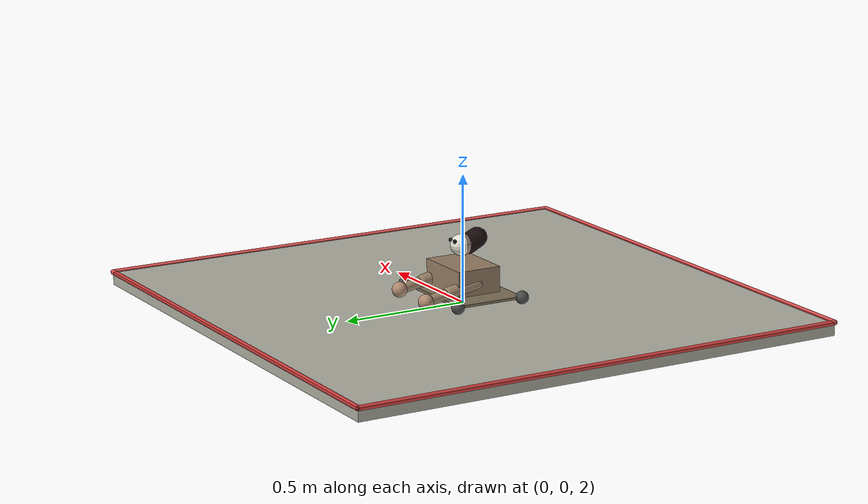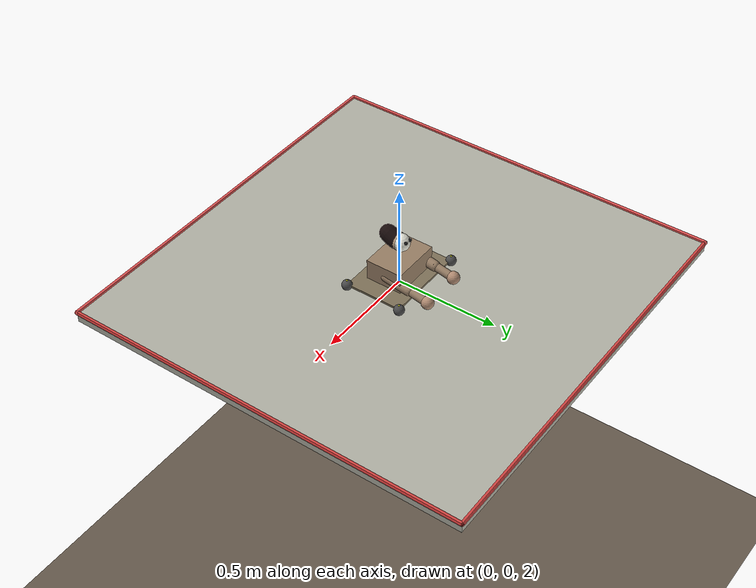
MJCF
<mujoco model="platform_creature_v9">
  <compiler angle="radian" inertiafromgeom="true"/>
  <option gravity="0 0 -9.81" integrator="Euler" timestep="0.01" cone="elliptic"/>

  <default>
    <joint armature="0.1" damping="2" limited="true"/>
    <geom contype="1" conaffinity="1" friction="0.8 0.3 0.1"/>
  </default>

  <asset>
    <texture builtin="checker" height="100" name="texplane" rgb1="0.6 0.6 0.6" rgb2="0.8 0.8 0.8" type="2d" width="100"/>
    <material name="MatPlatform" reflectance="0.3" shininess="0.5" specular="0.5" texrepeat="10 10" texture="texplane"/>
    <texture builtin="flat" height="100" name="texground" rgb1="0.4 0.35 0.3" rgb2="0.4 0.35 0.3" type="2d" width="100"/>
    <material name="MatGround" texture="texground"/>
  </asset>

  <worldbody>
    <light cutoff="100" diffuse="1 1 1" dir="0 0 -1" directional="true" pos="0 0 5" specular="0.2 0.2 0.2"/>

    <!-- Ground below the platform (where you land if you fall) -->
    <geom name="ground" type="plane" size="10 10 0.1" pos="0 0 0" rgba="0.4 0.35 0.3 1"
          material="MatGround" conaffinity="1" contype="1"/>

    <geom name="platform" type="box" size="1.0 1.0 0.025" pos="0 0 2.0"
          rgba="0.7 0.7 0.65 1" conaffinity="1" contype="1"
          friction="0.1 0.001 0.001"/>

    <!-- Platform edge markers (visual only, thin lines at edges) -->
    <geom name="edge_N" type="capsule" fromto="-1.0 1.0 2.025 1.0 1.0 2.025" size="0.01"
          rgba="0.9 0.2 0.2 0.8" contype="0" conaffinity="0"/>
    <geom name="edge_S" type="capsule" fromto="-1.0 -1.0 2.025 1.0 -1.0 2.025" size="0.01"
          rgba="0.9 0.2 0.2 0.8" contype="0" conaffinity="0"/>
    <geom name="edge_E" type="capsule" fromto="1.0 -1.0 2.025 1.0 1.0 2.025" size="0.01"
          rgba="0.9 0.2 0.2 0.8" contype="0" conaffinity="0"/>
    <geom name="edge_W" type="capsule" fromto="-1.0 -1.0 2.025 -1.0 1.0 2.025" size="0.01"
          rgba="0.9 0.2 0.2 0.8" contype="0" conaffinity="0"/>

    <!-- Walls removed 2026-04-21: scratch run at 300K learned to attend to
         walls instead of the ball (high sensitivity, 0/20 touches). Sparser
         scene forces vision to key on the ball. -->

    <!-- THE CREATURE: torso sled + 2 arms + head                     -->
    <body name="torso" pos="0 0 2.11">
      <joint name="root" type="free" armature="0" damping="2.0" limited="false"/>
      <geom name="torso_geom" type="box" size="0.12 0.09 0.05"
            rgba="0.6 0.5 0.4 1" density="800"
            contype="1" conaffinity="1"
            friction="0.1 0.001 0.0001"/>
      <body name="wheel_fl_body" pos="-0.20 0.14 -0.06">
        <joint name="wheel_fl_spin" type="ball" damping="0.01" armature="0.0001"/>
        <geom name="wheel_fl" type="sphere" size="0.025"
              rgba="0.3 0.3 0.3 1"
              contype="1" conaffinity="1"
              friction="2.0 0.005 0.0001"/>
        <!-- Rotation marker (visual only, rotates with wheel) -->
        <geom name="wheel_fl_mark" type="capsule" fromto="0 0 -0.025 0 0 0.025"
              size="0.004" rgba="0.9 0.9 0.1 1" contype="0" conaffinity="0"/>
      </body>
      <body name="wheel_fr_body" pos="0.20 0.14 -0.06">
        <joint name="wheel_fr_spin" type="ball" damping="0.01" armature="0.0001"/>
        <geom name="wheel_fr" type="sphere" size="0.025"
              rgba="0.3 0.3 0.3 1"
              contype="1" conaffinity="1"
              friction="2.0 0.005 0.0001"/>
        <geom name="wheel_fr_mark" type="capsule" fromto="0 0 -0.025 0 0 0.025"
              size="0.004" rgba="0.9 0.9 0.1 1" contype="0" conaffinity="0"/>
      </body>
      <body name="wheel_bl_body" pos="-0.20 -0.14 -0.06">
        <joint name="wheel_bl_spin" type="ball" damping="0.01" armature="0.0001"/>
        <geom name="wheel_bl" type="sphere" size="0.025"
              rgba="0.3 0.3 0.3 1"
              contype="1" conaffinity="1"
              friction="2.0 0.005 0.0001"/>
        <geom name="wheel_bl_mark" type="capsule" fromto="0 0 -0.025 0 0 0.025"
              size="0.004" rgba="0.9 0.9 0.1 1" contype="0" conaffinity="0"/>
      </body>
      <body name="wheel_br_body" pos="0.20 -0.14 -0.06">
        <joint name="wheel_br_spin" type="ball" damping="0.01" armature="0.0001"/>
        <geom name="wheel_br" type="sphere" size="0.025"
              rgba="0.3 0.3 0.3 1"
              contype="1" conaffinity="1"
              friction="2.0 0.005 0.0001"/>
        <geom name="wheel_br_mark" type="capsule" fromto="0 0 -0.025 0 0 0.025"
              size="0.004" rgba="0.9 0.9 0.1 1" contype="0" conaffinity="0"/>
      </body>
      <!-- Underside frame (visual only, non-colliding): spans the wheelbase so
           the chassis reads as a single structure, not a box with floating balls. -->
      <geom name="torso_skid" type="box" size="0.20 0.14 0.005"
            pos="0 0 -0.06" rgba="0.5 0.45 0.35 1" density="50"
            contype="0" conaffinity="0"/>
      <!-- Torso underside touch site -->
      <site name="torso_touch" pos="0 0 -0.05" size="0.08" rgba="0 0 0 0"/>

      <body name="left_shoulder" pos="-0.10 0 -0.01">
        <joint name="left_shoulder_pitch" type="hinge" axis="0 1 0"
               range="-1.5 1.5" pos="0 0 0"/>
        <!-- Shoulder paddle (X-axis rotation): arm swings in Y-Z plane,
             forward-to-down-to-back. This is the locomotion DOF. -->
        <joint name="left_shoulder_roll" type="hinge" axis="1 0 0"
               range="-2.0 0.8" pos="0 0 0"/>
        <geom name="left_upper_arm" type="capsule" fromto="0 0 0 0 0.12 -0.02"
              size="0.025" rgba="0.6 0.5 0.4 1"/>

        <body name="left_forearm" pos="0 0.12 -0.02">
          <!-- Elbow (Y-axis rotation — with forearm along Y this rotates the
               forearm around its own axis, near-inert; kept for symmetry). -->
          <joint name="left_elbow" type="hinge" axis="0 1 0"
                 range="-2.0 0.1" pos="0 0 0"/>
          <geom name="left_forearm_geom" type="capsule" fromto="0 0 0 0 0.10 -0.02"
                size="0.02" rgba="0.6 0.5 0.4 1"/>

          <!-- Hand -->
          <body name="left_hand" pos="0 0.10 -0.02">
            <geom name="left_hand_geom" type="sphere" size="0.03"
                  rgba="0.7 0.55 0.45 1" contype="1" conaffinity="1"/>
            <site name="left_hand_touch" pos="0 0 0" size="0.031" rgba="0 0 0 0"/>
          </body>
        </body>
      </body>

      <!-- ====== RIGHT ARM (identical forward-pointing paddle, mirror not
           needed since both arms point the same way — forward). ====== -->
      <body name="right_shoulder" pos="0.10 0 -0.01">
        <joint name="right_shoulder_pitch" type="hinge" axis="0 1 0"
               range="-1.5 1.5" pos="0 0 0"/>
        <joint name="right_shoulder_roll" type="hinge" axis="1 0 0"
               range="-2.0 0.8" pos="0 0 0"/>
        <geom name="right_upper_arm" type="capsule" fromto="0 0 0 0 0.12 -0.02"
              size="0.025" rgba="0.6 0.5 0.4 1"/>

        <body name="right_forearm" pos="0 0.12 -0.02">
          <joint name="right_elbow" type="hinge" axis="0 1 0"
                 range="-2.0 0.1" pos="0 0 0"/>
          <geom name="right_forearm_geom" type="capsule" fromto="0 0 0 0 0.10 -0.02"
                size="0.02" rgba="0.6 0.5 0.4 1"/>

          <body name="right_hand" pos="0 0.10 -0.02">
            <geom name="right_hand_geom" type="sphere" size="0.03"
                  rgba="0.7 0.55 0.45 1" contype="1" conaffinity="1"/>
            <site name="right_hand_touch" pos="0 0 0" size="0.031" rgba="0 0 0 0"/>
          </body>
        </body>
      </body>

      <body name="head_base" pos="0 0 0.09">
        <joint name="head_pan" type="hinge" axis="0 0 1"
               range="-1.5 1.5" pos="0 0 0"/>
        <geom name="head_base_geom" type="sphere" size="0.015"
              rgba="0.6 0.5 0.4 1" contype="0" conaffinity="0"/>

        <body name="head" pos="0 0 0.03">
          <joint name="head_tilt" type="hinge" axis="1 0 0"
                 range="-0.8 0.8" pos="0 0 0"/>
          <geom name="head_geom" type="sphere" size="0.04"
                rgba="0.7 0.6 0.5 1" contype="0" conaffinity="0"/>

          <!-- Face paint (visual only): makes "which way AB is facing"
               obvious in rendered videos. -->
          <geom name="face_white" type="sphere" size="0.041"
                pos="0 0.01 0" rgba="0.9 0.9 0.85 1"
                contype="0" conaffinity="0"/>
          <geom name="eye_L" type="sphere" size="0.008"
                pos="0.015 0.045 0.02" rgba="0.1 0.1 0.1 1"
                contype="0" conaffinity="0"/>
          <geom name="eye_R" type="sphere" size="0.008"
                pos="-0.015 0.045 0.02" rgba="0.1 0.1 0.1 1"
                contype="0" conaffinity="0"/>
          <geom name="hair_back" type="capsule"
                fromto="0 -0.02 0 0 -0.06 0.02" size="0.04"
                rgba="0.1 0.05 0.05 1"
                contype="0" conaffinity="0"/>

          <!-- pos y=0.05: in front of the 0.04-radius head sphere.
               xyaxes gives ~20° downward gaze so platform+ball are in frame. -->
          <camera name="head_cam" pos="0 0.05 0" xyaxes="1 0 0 0 0.342 0.940" fovy="25"/>
        </body>
      </body>
    </body>

    <!-- TARGET OBJECT (ball on the platform)                         -->
    <body name="target" pos="0 0 2.10">
      <joint name="target_free" type="free" armature="0" damping="0"/>
      <geom name="target_geom" type="sphere" size="0.04"
            rgba="1 0.2 0.2 1" contype="1" conaffinity="1" density="200"
            friction="1.0 0.005 0.01"/>
    </body>

    <!-- Overhead camera (experimenter view) -->
    <camera name="overhead" pos="0 0 5" xyaxes="1 0 0 0 1 0" fovy="60"/>
    <!-- Side camera (to see falls) -->
    <camera name="side" pos="4 0 2.5" xyaxes="0 1 0 0 0 1" fovy="60"/>
    <!-- Ringside camera: low, just outside south edge, slight down-tilt.
         Lets a viewer tell upright vs. tipping-over at a glance. -->
    <camera name="ringside" pos="0 -1.8 2.15" xyaxes="1 0 0 0 0.028 0.9996" fovy="50"/>
  </worldbody>

  <actuator>
    <motor name="left_shoulder_pitch_motor" joint="left_shoulder_pitch"
           ctrllimited="true" ctrlrange="-1 1" gear="15"/>
    <motor name="left_shoulder_roll_motor" joint="left_shoulder_roll"
           ctrllimited="true" ctrlrange="-1 1" gear="15"/>
    <motor name="left_elbow_motor" joint="left_elbow"
           ctrllimited="true" ctrlrange="-1 1" gear="10"/>
    <motor name="right_shoulder_pitch_motor" joint="right_shoulder_pitch"
           ctrllimited="true" ctrlrange="-1 1" gear="15"/>
    <motor name="right_shoulder_roll_motor" joint="right_shoulder_roll"
           ctrllimited="true" ctrlrange="-1 1" gear="15"/>
    <motor name="right_elbow_motor" joint="right_elbow"
           ctrllimited="true" ctrlrange="-1 1" gear="10"/>
    <position name="head_pan_motor" joint="head_pan"
              ctrllimited="true" ctrlrange="-1.5 1.5" kp="5"/>
    <position name="head_tilt_motor" joint="head_tilt"
              ctrllimited="true" ctrlrange="-0.8 0.8" kp="5"/>
  </actuator>

  <sensor>
    <!-- Arm joints -->
    <jointpos name="left_shoulder_pitch_pos" joint="left_shoulder_pitch"/>
    <jointpos name="left_shoulder_roll_pos" joint="left_shoulder_roll"/>
    <jointpos name="left_elbow_pos" joint="left_elbow"/>
    <jointpos name="right_shoulder_pitch_pos" joint="right_shoulder_pitch"/>
    <jointpos name="right_shoulder_roll_pos" joint="right_shoulder_roll"/>
    <jointpos name="right_elbow_pos" joint="right_elbow"/>
    <jointvel name="left_shoulder_pitch_vel" joint="left_shoulder_pitch"/>
    <jointvel name="left_shoulder_roll_vel" joint="left_shoulder_roll"/>
    <jointvel name="left_elbow_vel" joint="left_elbow"/>
    <jointvel name="right_shoulder_pitch_vel" joint="right_shoulder_pitch"/>
    <jointvel name="right_shoulder_roll_vel" joint="right_shoulder_roll"/>
    <jointvel name="right_elbow_vel" joint="right_elbow"/>
    <!-- Head joints -->
    <jointpos name="head_pan_pos" joint="head_pan"/>
    <jointpos name="head_tilt_pos" joint="head_tilt"/>
    <!-- Touch -->
    <touch name="left_hand_touch" site="left_hand_touch"/>
    <touch name="right_hand_touch" site="right_hand_touch"/>
    <touch name="torso_touch" site="torso_touch"/>
  </sensor>
</mujoco>
